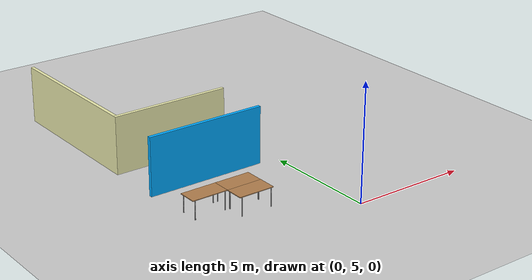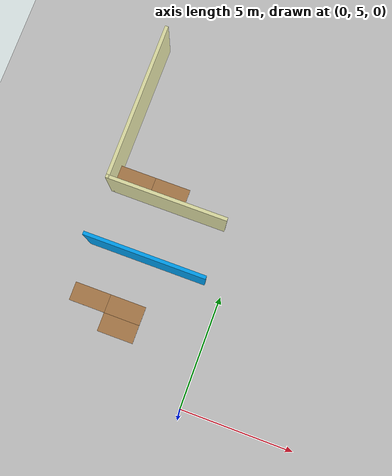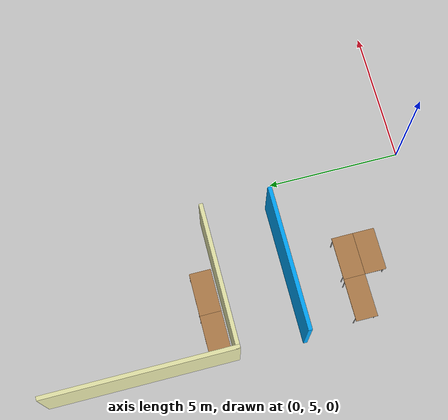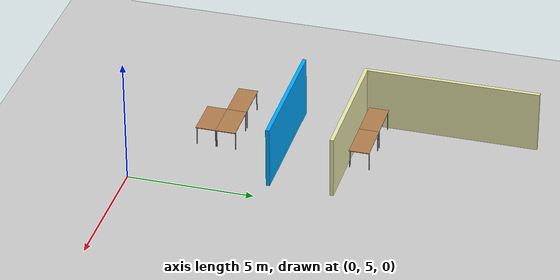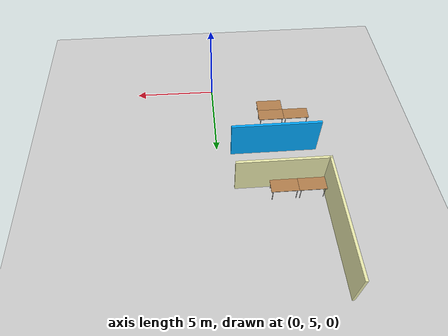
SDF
<sdf version="1.6">
 <world name="default">
  <model name="ground_plane">
   <static>1</static>
   <link name="link">
    <collision name="collision">
     <geometry><plane><normal>0 0 1</normal><size>100 100</size></plane></geometry>
     <surface><friction><ode><mu>100</mu><mu2>50</mu2></ode></friction></surface>
    </collision>
    <visual name="visual">
     <cast_shadows>0</cast_shadows>
     <geometry><plane><normal>0 0 1</normal><size>100 100</size></plane></geometry>
     <material>
      <script><uri>file://media/materials/scripts/gazebo.material</uri><name>Gazebo/Grey</name></script>
     </material>
    </visual>
   </link>
  </model>
  <model name="Building">
   <link name="Wall_40">
    <collision name="Wall_40_Collision">
     <geometry><box><size>6.95 0.15 2.5</size></box></geometry>
     <pose>0 0 1.25 0 -0 0</pose>
    </collision>
    <visual name="Wall_40_Visual">
     <pose>0 0 1.25 0 -0 0</pose>
     <geometry><box><size>6.95 0.15 2.5</size></box></geometry>
     <material>
      <script><uri>file://media/materials/scripts/gazebo.material</uri><name>Gazebo/Grey</name></script>
      <ambient>0.92 0.92 0.68 1</ambient>
     </material>
     <meta><layer>0</layer></meta>
    </visual>
    <pose>-6 16.2364 0 0 0 -1.5708</pose>
   </link>
   <link name="Wall_42">
    <collision name="Wall_42_Collision">
     <geometry><box><size>5.25 0.15 2.5</size></box></geometry>
     <pose>0 0 1.25 0 -0 0</pose>
    </collision>
    <visual name="Wall_42_Visual">
     <pose>0 0 1.25 0 -0 0</pose>
     <geometry><box><size>5.25 0.15 2.5</size></box></geometry>
     <material>
      <script><uri>file://media/materials/scripts/gazebo.material</uri><name>Gazebo/Grey</name></script>
      <ambient>0.92 0.92 0.68 1</ambient>
     </material>
     <meta><layer>0</layer></meta>
    </visual>
    <pose>-3.45 12.8364 0 0 -0 0</pose>
   </link>
   <link name="Wall_49">
    <collision name="Wall_49_Collision">
     <geometry><box><size>5.25 0.15 2.5</size></box></geometry>
     <pose>0 0 1.25 0 -0 0</pose>
    </collision>
    <visual name="Wall_49_Visual">
     <pose>0 0 1.25 0 -0 0</pose>
     <geometry><box><size>5.25 0.15 2.5</size></box></geometry>
     <material>
      <script><uri>file://media/materials/scripts/gazebo.material</uri><name>Gazebo/Grey</name></script>
      <ambient>0 0.666667 1 1</ambient>
     </material>
     <meta><layer>0</layer></meta>
    </visual>
    <pose>-3.45 10.3364 0 0 -0 3.14159</pose>
   </link>
   <static>1</static>
  </model>
  <model name="tablealt_0">
   <link name="link">
    <inertial>
     <mass>1</mass>
     <inertia><ixx>1</ixx><ixy>0</ixy><ixz>0</ixz><iyy>1</iyy><iyz>0</iyz><izz>1</izz></inertia>
    </inertial>
    <visual name="back_right_leg">
     <pose>-0.68 -0.38 0.4 0 -0 0</pose>
     <geometry><cylinder><radius>0.02</radius><length>0.8</length></cylinder></geometry>
     <material>
      <script><uri>file://media/materials/scripts/gazebo.material</uri><name>Gazebo/Grey</name></script>
      <shader type="pixel"><normal_map>__default__</normal_map></shader>
      <ambient>0.3 0.3 0.3 1</ambient>
      <diffuse>0.7 0.7 0.7 1</diffuse>
      <specular>0.01 0.01 0.01 1</specular>
      <emissive>0 0 0 1</emissive>
     </material>
    </visual>
    <visual name="back_left_leg">
     <pose>-0.68 0.38 0.4 0 -0 0</pose>
     <geometry><cylinder><radius>0.02</radius><length>0.8</length></cylinder></geometry>
     <material>
      <script><uri>file://media/materials/scripts/gazebo.material</uri><name>Gazebo/Grey</name></script>
      <shader type="pixel"><normal_map>__default__</normal_map></shader>
      <ambient>0.3 0.3 0.3 1</ambient>
      <diffuse>0.7 0.7 0.7 1</diffuse>
      <specular>0.01 0.01 0.01 1</specular>
      <emissive>0 0 0 1</emissive>
     </material>
    </visual>
    <visual name="visual1">
     <pose>0 0 0.8 0 -0 0</pose>
     <geometry><box><size>1.57 0.8 0.03</size></box></geometry>
     <material>
      <script><uri>file://media/materials/scripts/gazebo.material</uri><name>Gazebo/Wood</name></script>
      <shader type="pixel"><normal_map>__default__</normal_map></shader>
      <ambient>0.92 0.92 0.68 1</ambient>
      <diffuse>1 1 1 1</diffuse>
      <specular>0.2 0.2 0.2 1</specular>
      <emissive>0 0 0 1</emissive>
     </material>
    </visual>
    <visual name="front_left_leg">
     <pose>0.68 0.38 0.4 0 -0 0</pose>
     <geometry><cylinder><radius>0.02</radius><length>0.8</length></cylinder></geometry>
     <material>
      <script><uri>file://media/materials/scripts/gazebo.material</uri><name>Gazebo/Grey</name></script>
      <shader type="pixel"><normal_map>__default__</normal_map></shader>
      <ambient>0.3 0.3 0.3 1</ambient>
      <diffuse>0.7 0.7 0.7 1</diffuse>
      <specular>0.01 0.01 0.01 1</specular>
      <emissive>0 0 0 1</emissive>
     </material>
    </visual>
    <visual name="front_right_leg">
     <pose>0.68 -0.38 0.4 0 -0 0</pose>
     <geometry><cylinder><radius>0.02</radius><length>0.8</length></cylinder></geometry>
     <material>
      <script><uri>file://media/materials/scripts/gazebo.material</uri><name>Gazebo/Grey</name></script>
      <shader type="pixel"><normal_map>__default__</normal_map></shader>
      <ambient>0.3 0.3 0.3 1</ambient>
      <diffuse>0.7 0.7 0.7 1</diffuse>
      <specular>0.01 0.01 0.01 1</specular>
      <emissive>0 0 0 1</emissive>
     </material>
    </visual>
    <collision name="front_right_leg">
     <pose>0.68 -0.38 0.4 0 -0 0</pose>
     <geometry><cylinder><radius>0.02</radius><length>0.8</length></cylinder></geometry>
     <surface>
      <friction>
       <ode><mu>1</mu><mu2>1</mu2><fdir1>0 0 0</fdir1><slip1>0</slip1><slip2>0</slip2></ode>
       <torsional>
        <coefficient>1</coefficient>
        <patch_radius>0</patch_radius>
        <surface_radius>0</surface_radius>
        <use_patch_radius>1</use_patch_radius>
        <ode><slip>0</slip></ode>
       </torsional>
      </friction>
      <bounce><restitution_coefficient>0</restitution_coefficient><threshold>1e+06</threshold></bounce>
      <contact>
       <collide_without_contact>0</collide_without_contact>
       <collide_without_contact_bitmask>1</collide_without_contact_bitmask>
       <collide_bitmask>1</collide_bitmask>
       <ode>
        <soft_cfm>0</soft_cfm>
        <soft_erp>0.2</soft_erp>
        <kp>1e+13</kp>
        <kd>1</kd>
        <max_vel>0.01</max_vel>
        <min_depth>0</min_depth>
       </ode>
       <bullet>
        <split_impulse>1</split_impulse>
        <split_impulse_penetration_threshold>-0.01</split_impulse_penetration_threshold>
        <soft_cfm>0</soft_cfm>
        <soft_erp>0.2</soft_erp>
        <kp>1e+13</kp>
        <kd>1</kd>
       </bullet>
      </contact>
     </surface>
    </collision>
    <collision name="surface">
     <pose>0 0 0.8 0 -0 0</pose>
     <geometry><box><size>1.5 0.8 0.03</size></box></geometry>
     <surface>
      <friction>
       <ode><mu>0.6</mu><mu2>0.6</mu2><fdir1>0 0 0</fdir1><slip1>0</slip1><slip2>0</slip2></ode>
       <torsional>
        <coefficient>1</coefficient>
        <patch_radius>0</patch_radius>
        <surface_radius>0</surface_radius>
        <use_patch_radius>1</use_patch_radius>
        <ode><slip>0</slip></ode>
       </torsional>
      </friction>
      <bounce><restitution_coefficient>0</restitution_coefficient><threshold>1e+06</threshold></bounce>
      <contact>
       <collide_without_contact>0</collide_without_contact>
       <collide_without_contact_bitmask>1</collide_without_contact_bitmask>
       <collide_bitmask>1</collide_bitmask>
       <ode>
        <soft_cfm>0</soft_cfm>
        <soft_erp>0.2</soft_erp>
        <kp>1e+13</kp>
        <kd>1</kd>
        <max_vel>0.01</max_vel>
        <min_depth>0</min_depth>
       </ode>
       <bullet>
        <split_impulse>1</split_impulse>
        <split_impulse_penetration_threshold>-0.01</split_impulse_penetration_threshold>
        <soft_cfm>0</soft_cfm>
        <soft_erp>0.2</soft_erp>
        <kp>1e+13</kp>
        <kd>1</kd>
       </bullet>
      </contact>
     </surface>
    </collision>
    <collision name="front_left_leg">
     <pose>0.68 0.38 0.4 0 -0 0</pose>
     <geometry><cylinder><radius>0.02</radius><length>0.8</length></cylinder></geometry>
     <surface>
      <friction>
       <ode><mu>1</mu><mu2>1</mu2><fdir1>0 0 0</fdir1><slip1>0</slip1><slip2>0</slip2></ode>
       <torsional>
        <coefficient>1</coefficient>
        <patch_radius>0</patch_radius>
        <surface_radius>0</surface_radius>
        <use_patch_radius>1</use_patch_radius>
        <ode><slip>0</slip></ode>
       </torsional>
      </friction>
      <bounce><restitution_coefficient>0</restitution_coefficient><threshold>1e+06</threshold></bounce>
      <contact>
       <collide_without_contact>0</collide_without_contact>
       <collide_without_contact_bitmask>1</collide_without_contact_bitmask>
       <collide_bitmask>1</collide_bitmask>
       <ode>
        <soft_cfm>0</soft_cfm>
        <soft_erp>0.2</soft_erp>
        <kp>1e+13</kp>
        <kd>1</kd>
        <max_vel>0.01</max_vel>
        <min_depth>0</min_depth>
       </ode>
       <bullet>
        <split_impulse>1</split_impulse>
        <split_impulse_penetration_threshold>-0.01</split_impulse_penetration_threshold>
        <soft_cfm>0</soft_cfm>
        <soft_erp>0.2</soft_erp>
        <kp>1e+13</kp>
        <kd>1</kd>
       </bullet>
      </contact>
     </surface>
    </collision>
    <collision name="back_left_leg">
     <pose>-0.68 0.38 0.4 0 -0 0</pose>
     <geometry><cylinder><radius>0.02</radius><length>0.8</length></cylinder></geometry>
     <surface>
      <friction>
       <ode><mu>1</mu><mu2>1</mu2><fdir1>0 0 0</fdir1><slip1>0</slip1><slip2>0</slip2></ode>
       <torsional>
        <coefficient>1</coefficient>
        <patch_radius>0</patch_radius>
        <surface_radius>0</surface_radius>
        <use_patch_radius>1</use_patch_radius>
        <ode><slip>0</slip></ode>
       </torsional>
      </friction>
      <bounce><restitution_coefficient>0</restitution_coefficient><threshold>1e+06</threshold></bounce>
      <contact>
       <collide_without_contact>0</collide_without_contact>
       <collide_without_contact_bitmask>1</collide_without_contact_bitmask>
       <collide_bitmask>1</collide_bitmask>
       <ode>
        <soft_cfm>0</soft_cfm>
        <soft_erp>0.2</soft_erp>
        <kp>1e+13</kp>
        <kd>1</kd>
        <max_vel>0.01</max_vel>
        <min_depth>0</min_depth>
       </ode>
       <bullet>
        <split_impulse>1</split_impulse>
        <split_impulse_penetration_threshold>-0.01</split_impulse_penetration_threshold>
        <soft_cfm>0</soft_cfm>
        <soft_erp>0.2</soft_erp>
        <kp>1e+13</kp>
        <kd>1</kd>
       </bullet>
      </contact>
     </surface>
    </collision>
    <collision name="back_right_leg">
     <pose>-0.68 -0.38 0.4 0 -0 0</pose>
     <geometry><cylinder><radius>0.02</radius><length>0.8</length></cylinder></geometry>
     <surface>
      <friction>
       <ode><mu>1</mu><mu2>1</mu2><fdir1>0 0 0</fdir1><slip1>0</slip1><slip2>0</slip2></ode>
       <torsional>
        <coefficient>1</coefficient>
        <patch_radius>0</patch_radius>
        <surface_radius>0</surface_radius>
        <use_patch_radius>1</use_patch_radius>
        <ode><slip>0</slip></ode>
       </torsional>
      </friction>
      <bounce><restitution_coefficient>0</restitution_coefficient><threshold>1e+06</threshold></bounce>
      <contact>
       <collide_without_contact>0</collide_without_contact>
       <collide_without_contact_bitmask>1</collide_without_contact_bitmask>
       <collide_bitmask>1</collide_bitmask>
       <ode>
        <soft_cfm>0</soft_cfm>
        <soft_erp>0.2</soft_erp>
        <kp>1e+13</kp>
        <kd>1</kd>
        <max_vel>0.01</max_vel>
        <min_depth>0</min_depth>
       </ode>
       <bullet>
        <split_impulse>1</split_impulse>
        <split_impulse_penetration_threshold>-0.01</split_impulse_penetration_threshold>
        <soft_cfm>0</soft_cfm>
        <soft_erp>0.2</soft_erp>
        <kp>1e+13</kp>
        <kd>1</kd>
       </bullet>
      </contact>
     </surface>
    </collision>
   </link>
   <static>1</static>
   <pose>-5.13 8.07 0 0 -0 0</pose>
  </model>
  <model name="tablealt_0_clone">
   <link name="link">
    <inertial>
     <mass>1</mass>
     <inertia><ixx>1</ixx><ixy>0</ixy><ixz>0</ixz><iyy>1</iyy><iyz>0</iyz><izz>1</izz></inertia>
    </inertial>
    <visual name="back_right_leg">
     <pose>-0.68 -0.38 0.4 0 -0 0</pose>
     <geometry><cylinder><radius>0.02</radius><length>0.8</length></cylinder></geometry>
     <material>
      <script><uri>file://media/materials/scripts/gazebo.material</uri><name>Gazebo/Grey</name></script>
      <shader type="pixel"><normal_map>__default__</normal_map></shader>
      <ambient>0.3 0.3 0.3 1</ambient>
      <diffuse>0.7 0.7 0.7 1</diffuse>
      <specular>0.01 0.01 0.01 1</specular>
      <emissive>0 0 0 1</emissive>
     </material>
    </visual>
    <visual name="back_left_leg">
     <pose>-0.68 0.38 0.4 0 -0 0</pose>
     <geometry><cylinder><radius>0.02</radius><length>0.8</length></cylinder></geometry>
     <material>
      <script><uri>file://media/materials/scripts/gazebo.material</uri><name>Gazebo/Grey</name></script>
      <shader type="pixel"><normal_map>__default__</normal_map></shader>
      <ambient>0.3 0.3 0.3 1</ambient>
      <diffuse>0.7 0.7 0.7 1</diffuse>
      <specular>0.01 0.01 0.01 1</specular>
      <emissive>0 0 0 1</emissive>
     </material>
    </visual>
    <visual name="visual1">
     <pose>0 0 0.8 0 -0 0</pose>
     <geometry><box><size>1.57 0.8 0.03</size></box></geometry>
     <material>
      <script><uri>file://media/materials/scripts/gazebo.material</uri><name>Gazebo/Wood</name></script>
      <shader type="pixel"><normal_map>__default__</normal_map></shader>
      <ambient>0.92 0.92 0.68 1</ambient>
      <diffuse>1 1 1 1</diffuse>
      <specular>0.2 0.2 0.2 1</specular>
      <emissive>0 0 0 1</emissive>
     </material>
    </visual>
    <visual name="front_left_leg">
     <pose>0.68 0.38 0.4 0 -0 0</pose>
     <geometry><cylinder><radius>0.02</radius><length>0.8</length></cylinder></geometry>
     <material>
      <script><uri>file://media/materials/scripts/gazebo.material</uri><name>Gazebo/Grey</name></script>
      <shader type="pixel"><normal_map>__default__</normal_map></shader>
      <ambient>0.3 0.3 0.3 1</ambient>
      <diffuse>0.7 0.7 0.7 1</diffuse>
      <specular>0.01 0.01 0.01 1</specular>
      <emissive>0 0 0 1</emissive>
     </material>
    </visual>
    <visual name="front_right_leg">
     <pose>0.68 -0.38 0.4 0 -0 0</pose>
     <geometry><cylinder><radius>0.02</radius><length>0.8</length></cylinder></geometry>
     <material>
      <script><uri>file://media/materials/scripts/gazebo.material</uri><name>Gazebo/Grey</name></script>
      <shader type="pixel"><normal_map>__default__</normal_map></shader>
      <ambient>0.3 0.3 0.3 1</ambient>
      <diffuse>0.7 0.7 0.7 1</diffuse>
      <specular>0.01 0.01 0.01 1</specular>
      <emissive>0 0 0 1</emissive>
     </material>
    </visual>
    <collision name="front_right_leg">
     <pose>0.68 -0.38 0.4 0 -0 0</pose>
     <geometry><cylinder><radius>0.02</radius><length>0.8</length></cylinder></geometry>
     <surface>
      <friction>
       <ode><mu>1</mu><mu2>1</mu2><fdir1>0 0 0</fdir1><slip1>0</slip1><slip2>0</slip2></ode>
       <torsional>
        <coefficient>1</coefficient>
        <patch_radius>0</patch_radius>
        <surface_radius>0</surface_radius>
        <use_patch_radius>1</use_patch_radius>
        <ode><slip>0</slip></ode>
       </torsional>
      </friction>
      <bounce><restitution_coefficient>0</restitution_coefficient><threshold>1e+06</threshold></bounce>
      <contact>
       <collide_without_contact>0</collide_without_contact>
       <collide_without_contact_bitmask>1</collide_without_contact_bitmask>
       <collide_bitmask>1</collide_bitmask>
       <ode>
        <soft_cfm>0</soft_cfm>
        <soft_erp>0.2</soft_erp>
        <kp>1e+13</kp>
        <kd>1</kd>
        <max_vel>0.01</max_vel>
        <min_depth>0</min_depth>
       </ode>
       <bullet>
        <split_impulse>1</split_impulse>
        <split_impulse_penetration_threshold>-0.01</split_impulse_penetration_threshold>
        <soft_cfm>0</soft_cfm>
        <soft_erp>0.2</soft_erp>
        <kp>1e+13</kp>
        <kd>1</kd>
       </bullet>
      </contact>
     </surface>
    </collision>
    <collision name="surface">
     <pose>0 0 0.8 0 -0 0</pose>
     <geometry><box><size>1.5 0.8 0.03</size></box></geometry>
     <surface>
      <friction>
       <ode><mu>0.6</mu><mu2>0.6</mu2><fdir1>0 0 0</fdir1><slip1>0</slip1><slip2>0</slip2></ode>
       <torsional>
        <coefficient>1</coefficient>
        <patch_radius>0</patch_radius>
        <surface_radius>0</surface_radius>
        <use_patch_radius>1</use_patch_radius>
        <ode><slip>0</slip></ode>
       </torsional>
      </friction>
      <bounce><restitution_coefficient>0</restitution_coefficient><threshold>1e+06</threshold></bounce>
      <contact>
       <collide_without_contact>0</collide_without_contact>
       <collide_without_contact_bitmask>1</collide_without_contact_bitmask>
       <collide_bitmask>1</collide_bitmask>
       <ode>
        <soft_cfm>0</soft_cfm>
        <soft_erp>0.2</soft_erp>
        <kp>1e+13</kp>
        <kd>1</kd>
        <max_vel>0.01</max_vel>
        <min_depth>0</min_depth>
       </ode>
       <bullet>
        <split_impulse>1</split_impulse>
        <split_impulse_penetration_threshold>-0.01</split_impulse_penetration_threshold>
        <soft_cfm>0</soft_cfm>
        <soft_erp>0.2</soft_erp>
        <kp>1e+13</kp>
        <kd>1</kd>
       </bullet>
      </contact>
     </surface>
    </collision>
    <collision name="front_left_leg">
     <pose>0.68 0.38 0.4 0 -0 0</pose>
     <geometry><cylinder><radius>0.02</radius><length>0.8</length></cylinder></geometry>
     <surface>
      <friction>
       <ode><mu>1</mu><mu2>1</mu2><fdir1>0 0 0</fdir1><slip1>0</slip1><slip2>0</slip2></ode>
       <torsional>
        <coefficient>1</coefficient>
        <patch_radius>0</patch_radius>
        <surface_radius>0</surface_radius>
        <use_patch_radius>1</use_patch_radius>
        <ode><slip>0</slip></ode>
       </torsional>
      </friction>
      <bounce><restitution_coefficient>0</restitution_coefficient><threshold>1e+06</threshold></bounce>
      <contact>
       <collide_without_contact>0</collide_without_contact>
       <collide_without_contact_bitmask>1</collide_without_contact_bitmask>
       <collide_bitmask>1</collide_bitmask>
       <ode>
        <soft_cfm>0</soft_cfm>
        <soft_erp>0.2</soft_erp>
        <kp>1e+13</kp>
        <kd>1</kd>
        <max_vel>0.01</max_vel>
        <min_depth>0</min_depth>
       </ode>
       <bullet>
        <split_impulse>1</split_impulse>
        <split_impulse_penetration_threshold>-0.01</split_impulse_penetration_threshold>
        <soft_cfm>0</soft_cfm>
        <soft_erp>0.2</soft_erp>
        <kp>1e+13</kp>
        <kd>1</kd>
       </bullet>
      </contact>
     </surface>
    </collision>
    <collision name="back_left_leg">
     <pose>-0.68 0.38 0.4 0 -0 0</pose>
     <geometry><cylinder><radius>0.02</radius><length>0.8</length></cylinder></geometry>
     <surface>
      <friction>
       <ode><mu>1</mu><mu2>1</mu2><fdir1>0 0 0</fdir1><slip1>0</slip1><slip2>0</slip2></ode>
       <torsional>
        <coefficient>1</coefficient>
        <patch_radius>0</patch_radius>
        <surface_radius>0</surface_radius>
        <use_patch_radius>1</use_patch_radius>
        <ode><slip>0</slip></ode>
       </torsional>
      </friction>
      <bounce><restitution_coefficient>0</restitution_coefficient><threshold>1e+06</threshold></bounce>
      <contact>
       <collide_without_contact>0</collide_without_contact>
       <collide_without_contact_bitmask>1</collide_without_contact_bitmask>
       <collide_bitmask>1</collide_bitmask>
       <ode>
        <soft_cfm>0</soft_cfm>
        <soft_erp>0.2</soft_erp>
        <kp>1e+13</kp>
        <kd>1</kd>
        <max_vel>0.01</max_vel>
        <min_depth>0</min_depth>
       </ode>
       <bullet>
        <split_impulse>1</split_impulse>
        <split_impulse_penetration_threshold>-0.01</split_impulse_penetration_threshold>
        <soft_cfm>0</soft_cfm>
        <soft_erp>0.2</soft_erp>
        <kp>1e+13</kp>
        <kd>1</kd>
       </bullet>
      </contact>
     </surface>
    </collision>
    <collision name="back_right_leg">
     <pose>-0.68 -0.38 0.4 0 -0 0</pose>
     <geometry><cylinder><radius>0.02</radius><length>0.8</length></cylinder></geometry>
     <surface>
      <friction>
       <ode><mu>1</mu><mu2>1</mu2><fdir1>0 0 0</fdir1><slip1>0</slip1><slip2>0</slip2></ode>
       <torsional>
        <coefficient>1</coefficient>
        <patch_radius>0</patch_radius>
        <surface_radius>0</surface_radius>
        <use_patch_radius>1</use_patch_radius>
        <ode><slip>0</slip></ode>
       </torsional>
      </friction>
      <bounce><restitution_coefficient>0</restitution_coefficient><threshold>1e+06</threshold></bounce>
      <contact>
       <collide_without_contact>0</collide_without_contact>
       <collide_without_contact_bitmask>1</collide_without_contact_bitmask>
       <collide_bitmask>1</collide_bitmask>
       <ode>
        <soft_cfm>0</soft_cfm>
        <soft_erp>0.2</soft_erp>
        <kp>1e+13</kp>
        <kd>1</kd>
        <max_vel>0.01</max_vel>
        <min_depth>0</min_depth>
       </ode>
       <bullet>
        <split_impulse>1</split_impulse>
        <split_impulse_penetration_threshold>-0.01</split_impulse_penetration_threshold>
        <soft_cfm>0</soft_cfm>
        <soft_erp>0.2</soft_erp>
        <kp>1e+13</kp>
        <kd>1</kd>
       </bullet>
      </contact>
     </surface>
    </collision>
   </link>
   <static>1</static>
   <pose>-3.56 8.07 0 0 -0 0</pose>
  </model>
  <model name="tablealt_0_clone_3">
   <link name="link">
    <inertial>
     <mass>1</mass>
     <inertia><ixx>1</ixx><ixy>0</ixy><ixz>0</ixz><iyy>1</iyy><iyz>0</iyz><izz>1</izz></inertia>
    </inertial>
    <visual name="back_right_leg">
     <pose>-0.68 -0.38 0.4 0 -0 0</pose>
     <geometry><cylinder><radius>0.02</radius><length>0.8</length></cylinder></geometry>
     <material>
      <script><uri>file://media/materials/scripts/gazebo.material</uri><name>Gazebo/Grey</name></script>
      <shader type="pixel"><normal_map>__default__</normal_map></shader>
      <ambient>0.3 0.3 0.3 1</ambient>
      <diffuse>0.7 0.7 0.7 1</diffuse>
      <specular>0.01 0.01 0.01 1</specular>
      <emissive>0 0 0 1</emissive>
     </material>
    </visual>
    <visual name="back_left_leg">
     <pose>-0.68 0.38 0.4 0 -0 0</pose>
     <geometry><cylinder><radius>0.02</radius><length>0.8</length></cylinder></geometry>
     <material>
      <script><uri>file://media/materials/scripts/gazebo.material</uri><name>Gazebo/Grey</name></script>
      <shader type="pixel"><normal_map>__default__</normal_map></shader>
      <ambient>0.3 0.3 0.3 1</ambient>
      <diffuse>0.7 0.7 0.7 1</diffuse>
      <specular>0.01 0.01 0.01 1</specular>
      <emissive>0 0 0 1</emissive>
     </material>
    </visual>
    <visual name="visual1">
     <pose>0 0 0.8 0 -0 0</pose>
     <geometry><box><size>1.57 0.8 0.03</size></box></geometry>
     <material>
      <script><uri>file://media/materials/scripts/gazebo.material</uri><name>Gazebo/Wood</name></script>
      <shader type="pixel"><normal_map>__default__</normal_map></shader>
      <ambient>0.92 0.92 0.68 1</ambient>
      <diffuse>1 1 1 1</diffuse>
      <specular>0.2 0.2 0.2 1</specular>
      <emissive>0 0 0 1</emissive>
     </material>
    </visual>
    <visual name="front_left_leg">
     <pose>0.68 0.38 0.4 0 -0 0</pose>
     <geometry><cylinder><radius>0.02</radius><length>0.8</length></cylinder></geometry>
     <material>
      <script><uri>file://media/materials/scripts/gazebo.material</uri><name>Gazebo/Grey</name></script>
      <shader type="pixel"><normal_map>__default__</normal_map></shader>
      <ambient>0.3 0.3 0.3 1</ambient>
      <diffuse>0.7 0.7 0.7 1</diffuse>
      <specular>0.01 0.01 0.01 1</specular>
      <emissive>0 0 0 1</emissive>
     </material>
    </visual>
    <visual name="front_right_leg">
     <pose>0.68 -0.38 0.4 0 -0 0</pose>
     <geometry><cylinder><radius>0.02</radius><length>0.8</length></cylinder></geometry>
     <material>
      <script><uri>file://media/materials/scripts/gazebo.material</uri><name>Gazebo/Grey</name></script>
      <shader type="pixel"><normal_map>__default__</normal_map></shader>
      <ambient>0.3 0.3 0.3 1</ambient>
      <diffuse>0.7 0.7 0.7 1</diffuse>
      <specular>0.01 0.01 0.01 1</specular>
      <emissive>0 0 0 1</emissive>
     </material>
    </visual>
    <collision name="front_right_leg">
     <pose>0.68 -0.38 0.4 0 -0 0</pose>
     <geometry><cylinder><radius>0.02</radius><length>0.8</length></cylinder></geometry>
     <surface>
      <friction>
       <ode><mu>1</mu><mu2>1</mu2><fdir1>0 0 0</fdir1><slip1>0</slip1><slip2>0</slip2></ode>
       <torsional>
        <coefficient>1</coefficient>
        <patch_radius>0</patch_radius>
        <surface_radius>0</surface_radius>
        <use_patch_radius>1</use_patch_radius>
        <ode><slip>0</slip></ode>
       </torsional>
      </friction>
      <bounce><restitution_coefficient>0</restitution_coefficient><threshold>1e+06</threshold></bounce>
      <contact>
       <collide_without_contact>0</collide_without_contact>
       <collide_without_contact_bitmask>1</collide_without_contact_bitmask>
       <collide_bitmask>1</collide_bitmask>
       <ode>
        <soft_cfm>0</soft_cfm>
        <soft_erp>0.2</soft_erp>
        <kp>1e+13</kp>
        <kd>1</kd>
        <max_vel>0.01</max_vel>
        <min_depth>0</min_depth>
       </ode>
       <bullet>
        <split_impulse>1</split_impulse>
        <split_impulse_penetration_threshold>-0.01</split_impulse_penetration_threshold>
        <soft_cfm>0</soft_cfm>
        <soft_erp>0.2</soft_erp>
        <kp>1e+13</kp>
        <kd>1</kd>
       </bullet>
      </contact>
     </surface>
    </collision>
    <collision name="surface">
     <pose>0 0 0.8 0 -0 0</pose>
     <geometry><box><size>1.5 0.8 0.03</size></box></geometry>
     <surface>
      <friction>
       <ode><mu>0.6</mu><mu2>0.6</mu2><fdir1>0 0 0</fdir1><slip1>0</slip1><slip2>0</slip2></ode>
       <torsional>
        <coefficient>1</coefficient>
        <patch_radius>0</patch_radius>
        <surface_radius>0</surface_radius>
        <use_patch_radius>1</use_patch_radius>
        <ode><slip>0</slip></ode>
       </torsional>
      </friction>
      <bounce><restitution_coefficient>0</restitution_coefficient><threshold>1e+06</threshold></bounce>
      <contact>
       <collide_without_contact>0</collide_without_contact>
       <collide_without_contact_bitmask>1</collide_without_contact_bitmask>
       <collide_bitmask>1</collide_bitmask>
       <ode>
        <soft_cfm>0</soft_cfm>
        <soft_erp>0.2</soft_erp>
        <kp>1e+13</kp>
        <kd>1</kd>
        <max_vel>0.01</max_vel>
        <min_depth>0</min_depth>
       </ode>
       <bullet>
        <split_impulse>1</split_impulse>
        <split_impulse_penetration_threshold>-0.01</split_impulse_penetration_threshold>
        <soft_cfm>0</soft_cfm>
        <soft_erp>0.2</soft_erp>
        <kp>1e+13</kp>
        <kd>1</kd>
       </bullet>
      </contact>
     </surface>
    </collision>
    <collision name="front_left_leg">
     <pose>0.68 0.38 0.4 0 -0 0</pose>
     <geometry><cylinder><radius>0.02</radius><length>0.8</length></cylinder></geometry>
     <surface>
      <friction>
       <ode><mu>1</mu><mu2>1</mu2><fdir1>0 0 0</fdir1><slip1>0</slip1><slip2>0</slip2></ode>
       <torsional>
        <coefficient>1</coefficient>
        <patch_radius>0</patch_radius>
        <surface_radius>0</surface_radius>
        <use_patch_radius>1</use_patch_radius>
        <ode><slip>0</slip></ode>
       </torsional>
      </friction>
      <bounce><restitution_coefficient>0</restitution_coefficient><threshold>1e+06</threshold></bounce>
      <contact>
       <collide_without_contact>0</collide_without_contact>
       <collide_without_contact_bitmask>1</collide_without_contact_bitmask>
       <collide_bitmask>1</collide_bitmask>
       <ode>
        <soft_cfm>0</soft_cfm>
        <soft_erp>0.2</soft_erp>
        <kp>1e+13</kp>
        <kd>1</kd>
        <max_vel>0.01</max_vel>
        <min_depth>0</min_depth>
       </ode>
       <bullet>
        <split_impulse>1</split_impulse>
        <split_impulse_penetration_threshold>-0.01</split_impulse_penetration_threshold>
        <soft_cfm>0</soft_cfm>
        <soft_erp>0.2</soft_erp>
        <kp>1e+13</kp>
        <kd>1</kd>
       </bullet>
      </contact>
     </surface>
    </collision>
    <collision name="back_left_leg">
     <pose>-0.68 0.38 0.4 0 -0 0</pose>
     <geometry><cylinder><radius>0.02</radius><length>0.8</length></cylinder></geometry>
     <surface>
      <friction>
       <ode><mu>1</mu><mu2>1</mu2><fdir1>0 0 0</fdir1><slip1>0</slip1><slip2>0</slip2></ode>
       <torsional>
        <coefficient>1</coefficient>
        <patch_radius>0</patch_radius>
        <surface_radius>0</surface_radius>
        <use_patch_radius>1</use_patch_radius>
        <ode><slip>0</slip></ode>
       </torsional>
      </friction>
      <bounce><restitution_coefficient>0</restitution_coefficient><threshold>1e+06</threshold></bounce>
      <contact>
       <collide_without_contact>0</collide_without_contact>
       <collide_without_contact_bitmask>1</collide_without_contact_bitmask>
       <collide_bitmask>1</collide_bitmask>
       <ode>
        <soft_cfm>0</soft_cfm>
        <soft_erp>0.2</soft_erp>
        <kp>1e+13</kp>
        <kd>1</kd>
        <max_vel>0.01</max_vel>
        <min_depth>0</min_depth>
       </ode>
       <bullet>
        <split_impulse>1</split_impulse>
        <split_impulse_penetration_threshold>-0.01</split_impulse_penetration_threshold>
        <soft_cfm>0</soft_cfm>
        <soft_erp>0.2</soft_erp>
        <kp>1e+13</kp>
        <kd>1</kd>
       </bullet>
      </contact>
     </surface>
    </collision>
    <collision name="back_right_leg">
     <pose>-0.68 -0.38 0.4 0 -0 0</pose>
     <geometry><cylinder><radius>0.02</radius><length>0.8</length></cylinder></geometry>
     <surface>
      <friction>
       <ode><mu>1</mu><mu2>1</mu2><fdir1>0 0 0</fdir1><slip1>0</slip1><slip2>0</slip2></ode>
       <torsional>
        <coefficient>1</coefficient>
        <patch_radius>0</patch_radius>
        <surface_radius>0</surface_radius>
        <use_patch_radius>1</use_patch_radius>
        <ode><slip>0</slip></ode>
       </torsional>
      </friction>
      <bounce><restitution_coefficient>0</restitution_coefficient><threshold>1e+06</threshold></bounce>
      <contact>
       <collide_without_contact>0</collide_without_contact>
       <collide_without_contact_bitmask>1</collide_without_contact_bitmask>
       <collide_bitmask>1</collide_bitmask>
       <ode>
        <soft_cfm>0</soft_cfm>
        <soft_erp>0.2</soft_erp>
        <kp>1e+13</kp>
        <kd>1</kd>
        <max_vel>0.01</max_vel>
        <min_depth>0</min_depth>
       </ode>
       <bullet>
        <split_impulse>1</split_impulse>
        <split_impulse_penetration_threshold>-0.01</split_impulse_penetration_threshold>
        <soft_cfm>0</soft_cfm>
        <soft_erp>0.2</soft_erp>
        <kp>1e+13</kp>
        <kd>1</kd>
       </bullet>
      </contact>
     </surface>
    </collision>
   </link>
   <static>1</static>
   <pose>-3.56 7.27 0 0 -0 0</pose>
  </model>
  <model name="tablealt_0_clone_66">
   <link name="link">
    <inertial>
     <mass>1</mass>
     <inertia><ixx>1</ixx><ixy>0</ixy><ixz>0</ixz><iyy>1</iyy><iyz>0</iyz><izz>1</izz></inertia>
    </inertial>
    <visual name="back_right_leg">
     <pose>-0.68 -0.38 0.4 0 -0 0</pose>
     <geometry><cylinder><radius>0.02</radius><length>0.8</length></cylinder></geometry>
     <material>
      <script><uri>file://media/materials/scripts/gazebo.material</uri><name>Gazebo/Grey</name></script>
      <shader type="pixel"><normal_map>__default__</normal_map></shader>
      <ambient>0.3 0.3 0.3 1</ambient>
      <diffuse>0.7 0.7 0.7 1</diffuse>
      <specular>0.01 0.01 0.01 1</specular>
      <emissive>0 0 0 1</emissive>
     </material>
    </visual>
    <visual name="back_left_leg">
     <pose>-0.68 0.38 0.4 0 -0 0</pose>
     <geometry><cylinder><radius>0.02</radius><length>0.8</length></cylinder></geometry>
     <material>
      <script><uri>file://media/materials/scripts/gazebo.material</uri><name>Gazebo/Grey</name></script>
      <shader type="pixel"><normal_map>__default__</normal_map></shader>
      <ambient>0.3 0.3 0.3 1</ambient>
      <diffuse>0.7 0.7 0.7 1</diffuse>
      <specular>0.01 0.01 0.01 1</specular>
      <emissive>0 0 0 1</emissive>
     </material>
    </visual>
    <visual name="visual1">
     <pose>0 0 0.8 0 -0 0</pose>
     <geometry><box><size>1.57 0.8 0.03</size></box></geometry>
     <material>
      <script><uri>file://media/materials/scripts/gazebo.material</uri><name>Gazebo/Wood</name></script>
      <shader type="pixel"><normal_map>__default__</normal_map></shader>
      <ambient>0.92 0.92 0.68 1</ambient>
      <diffuse>1 1 1 1</diffuse>
      <specular>0.2 0.2 0.2 1</specular>
      <emissive>0 0 0 1</emissive>
     </material>
    </visual>
    <visual name="front_left_leg">
     <pose>0.68 0.38 0.4 0 -0 0</pose>
     <geometry><cylinder><radius>0.02</radius><length>0.8</length></cylinder></geometry>
     <material>
      <script><uri>file://media/materials/scripts/gazebo.material</uri><name>Gazebo/Grey</name></script>
      <shader type="pixel"><normal_map>__default__</normal_map></shader>
      <ambient>0.3 0.3 0.3 1</ambient>
      <diffuse>0.7 0.7 0.7 1</diffuse>
      <specular>0.01 0.01 0.01 1</specular>
      <emissive>0 0 0 1</emissive>
     </material>
    </visual>
    <visual name="front_right_leg">
     <pose>0.68 -0.38 0.4 0 -0 0</pose>
     <geometry><cylinder><radius>0.02</radius><length>0.8</length></cylinder></geometry>
     <material>
      <script><uri>file://media/materials/scripts/gazebo.material</uri><name>Gazebo/Grey</name></script>
      <shader type="pixel"><normal_map>__default__</normal_map></shader>
      <ambient>0.3 0.3 0.3 1</ambient>
      <diffuse>0.7 0.7 0.7 1</diffuse>
      <specular>0.01 0.01 0.01 1</specular>
      <emissive>0 0 0 1</emissive>
     </material>
    </visual>
    <collision name="front_right_leg">
     <pose>0.68 -0.38 0.4 0 -0 0</pose>
     <geometry><cylinder><radius>0.02</radius><length>0.8</length></cylinder></geometry>
     <surface>
      <friction>
       <ode><mu>1</mu><mu2>1</mu2><fdir1>0 0 0</fdir1><slip1>0</slip1><slip2>0</slip2></ode>
       <torsional>
        <coefficient>1</coefficient>
        <patch_radius>0</patch_radius>
        <surface_radius>0</surface_radius>
        <use_patch_radius>1</use_patch_radius>
        <ode><slip>0</slip></ode>
       </torsional>
      </friction>
      <bounce><restitution_coefficient>0</restitution_coefficient><threshold>1e+06</threshold></bounce>
      <contact>
       <collide_without_contact>0</collide_without_contact>
       <collide_without_contact_bitmask>1</collide_without_contact_bitmask>
       <collide_bitmask>1</collide_bitmask>
       <ode>
        <soft_cfm>0</soft_cfm>
        <soft_erp>0.2</soft_erp>
        <kp>1e+13</kp>
        <kd>1</kd>
        <max_vel>0.01</max_vel>
        <min_depth>0</min_depth>
       </ode>
       <bullet>
        <split_impulse>1</split_impulse>
        <split_impulse_penetration_threshold>-0.01</split_impulse_penetration_threshold>
        <soft_cfm>0</soft_cfm>
        <soft_erp>0.2</soft_erp>
        <kp>1e+13</kp>
        <kd>1</kd>
       </bullet>
      </contact>
     </surface>
    </collision>
    <collision name="surface">
     <pose>0 0 0.8 0 -0 0</pose>
     <geometry><box><size>1.5 0.8 0.03</size></box></geometry>
     <surface>
      <friction>
       <ode><mu>0.6</mu><mu2>0.6</mu2><fdir1>0 0 0</fdir1><slip1>0</slip1><slip2>0</slip2></ode>
       <torsional>
        <coefficient>1</coefficient>
        <patch_radius>0</patch_radius>
        <surface_radius>0</surface_radius>
        <use_patch_radius>1</use_patch_radius>
        <ode><slip>0</slip></ode>
       </torsional>
      </friction>
      <bounce><restitution_coefficient>0</restitution_coefficient><threshold>1e+06</threshold></bounce>
      <contact>
       <collide_without_contact>0</collide_without_contact>
       <collide_without_contact_bitmask>1</collide_without_contact_bitmask>
       <collide_bitmask>1</collide_bitmask>
       <ode>
        <soft_cfm>0</soft_cfm>
        <soft_erp>0.2</soft_erp>
        <kp>1e+13</kp>
        <kd>1</kd>
        <max_vel>0.01</max_vel>
        <min_depth>0</min_depth>
       </ode>
       <bullet>
        <split_impulse>1</split_impulse>
        <split_impulse_penetration_threshold>-0.01</split_impulse_penetration_threshold>
        <soft_cfm>0</soft_cfm>
        <soft_erp>0.2</soft_erp>
        <kp>1e+13</kp>
        <kd>1</kd>
       </bullet>
      </contact>
     </surface>
    </collision>
    <collision name="front_left_leg">
     <pose>0.68 0.38 0.4 0 -0 0</pose>
     <geometry><cylinder><radius>0.02</radius><length>0.8</length></cylinder></geometry>
     <surface>
      <friction>
       <ode><mu>1</mu><mu2>1</mu2><fdir1>0 0 0</fdir1><slip1>0</slip1><slip2>0</slip2></ode>
       <torsional>
        <coefficient>1</coefficient>
        <patch_radius>0</patch_radius>
        <surface_radius>0</surface_radius>
        <use_patch_radius>1</use_patch_radius>
        <ode><slip>0</slip></ode>
       </torsional>
      </friction>
      <bounce><restitution_coefficient>0</restitution_coefficient><threshold>1e+06</threshold></bounce>
      <contact>
       <collide_without_contact>0</collide_without_contact>
       <collide_without_contact_bitmask>1</collide_without_contact_bitmask>
       <collide_bitmask>1</collide_bitmask>
       <ode>
        <soft_cfm>0</soft_cfm>
        <soft_erp>0.2</soft_erp>
        <kp>1e+13</kp>
        <kd>1</kd>
        <max_vel>0.01</max_vel>
        <min_depth>0</min_depth>
       </ode>
       <bullet>
        <split_impulse>1</split_impulse>
        <split_impulse_penetration_threshold>-0.01</split_impulse_penetration_threshold>
        <soft_cfm>0</soft_cfm>
        <soft_erp>0.2</soft_erp>
        <kp>1e+13</kp>
        <kd>1</kd>
       </bullet>
      </contact>
     </surface>
    </collision>
    <collision name="back_left_leg">
     <pose>-0.68 0.38 0.4 0 -0 0</pose>
     <geometry><cylinder><radius>0.02</radius><length>0.8</length></cylinder></geometry>
     <surface>
      <friction>
       <ode><mu>1</mu><mu2>1</mu2><fdir1>0 0 0</fdir1><slip1>0</slip1><slip2>0</slip2></ode>
       <torsional>
        <coefficient>1</coefficient>
        <patch_radius>0</patch_radius>
        <surface_radius>0</surface_radius>
        <use_patch_radius>1</use_patch_radius>
        <ode><slip>0</slip></ode>
       </torsional>
      </friction>
      <bounce><restitution_coefficient>0</restitution_coefficient><threshold>1e+06</threshold></bounce>
      <contact>
       <collide_without_contact>0</collide_without_contact>
       <collide_without_contact_bitmask>1</collide_without_contact_bitmask>
       <collide_bitmask>1</collide_bitmask>
       <ode>
        <soft_cfm>0</soft_cfm>
        <soft_erp>0.2</soft_erp>
        <kp>1e+13</kp>
        <kd>1</kd>
        <max_vel>0.01</max_vel>
        <min_depth>0</min_depth>
       </ode>
       <bullet>
        <split_impulse>1</split_impulse>
        <split_impulse_penetration_threshold>-0.01</split_impulse_penetration_threshold>
        <soft_cfm>0</soft_cfm>
        <soft_erp>0.2</soft_erp>
        <kp>1e+13</kp>
        <kd>1</kd>
       </bullet>
      </contact>
     </surface>
    </collision>
    <collision name="back_right_leg">
     <pose>-0.68 -0.38 0.4 0 -0 0</pose>
     <geometry><cylinder><radius>0.02</radius><length>0.8</length></cylinder></geometry>
     <surface>
      <friction>
       <ode><mu>1</mu><mu2>1</mu2><fdir1>0 0 0</fdir1><slip1>0</slip1><slip2>0</slip2></ode>
       <torsional>
        <coefficient>1</coefficient>
        <patch_radius>0</patch_radius>
        <surface_radius>0</surface_radius>
        <use_patch_radius>1</use_patch_radius>
        <ode><slip>0</slip></ode>
       </torsional>
      </friction>
      <bounce><restitution_coefficient>0</restitution_coefficient><threshold>1e+06</threshold></bounce>
      <contact>
       <collide_without_contact>0</collide_without_contact>
       <collide_without_contact_bitmask>1</collide_without_contact_bitmask>
       <collide_bitmask>1</collide_bitmask>
       <ode>
        <soft_cfm>0</soft_cfm>
        <soft_erp>0.2</soft_erp>
        <kp>1e+13</kp>
        <kd>1</kd>
        <max_vel>0.01</max_vel>
        <min_depth>0</min_depth>
       </ode>
       <bullet>
        <split_impulse>1</split_impulse>
        <split_impulse_penetration_threshold>-0.01</split_impulse_penetration_threshold>
        <soft_cfm>0</soft_cfm>
        <soft_erp>0.2</soft_erp>
        <kp>1e+13</kp>
        <kd>1</kd>
       </bullet>
      </contact>
     </surface>
    </collision>
   </link>
   <static>1</static>
   <pose>-5.13 13.4 0 0 -0 0</pose>
  </model>
  <model name="tablealt_0_clone_67">
   <link name="link">
    <inertial>
     <mass>1</mass>
     <inertia><ixx>1</ixx><ixy>0</ixy><ixz>0</ixz><iyy>1</iyy><iyz>0</iyz><izz>1</izz></inertia>
    </inertial>
    <visual name="back_right_leg">
     <pose>-0.68 -0.38 0.4 0 -0 0</pose>
     <geometry><cylinder><radius>0.02</radius><length>0.8</length></cylinder></geometry>
     <material>
      <script><uri>file://media/materials/scripts/gazebo.material</uri><name>Gazebo/Grey</name></script>
      <shader type="pixel"><normal_map>__default__</normal_map></shader>
      <ambient>0.3 0.3 0.3 1</ambient>
      <diffuse>0.7 0.7 0.7 1</diffuse>
      <specular>0.01 0.01 0.01 1</specular>
      <emissive>0 0 0 1</emissive>
     </material>
    </visual>
    <visual name="back_left_leg">
     <pose>-0.68 0.38 0.4 0 -0 0</pose>
     <geometry><cylinder><radius>0.02</radius><length>0.8</length></cylinder></geometry>
     <material>
      <script><uri>file://media/materials/scripts/gazebo.material</uri><name>Gazebo/Grey</name></script>
      <shader type="pixel"><normal_map>__default__</normal_map></shader>
      <ambient>0.3 0.3 0.3 1</ambient>
      <diffuse>0.7 0.7 0.7 1</diffuse>
      <specular>0.01 0.01 0.01 1</specular>
      <emissive>0 0 0 1</emissive>
     </material>
    </visual>
    <visual name="visual1">
     <pose>0 0 0.8 0 -0 0</pose>
     <geometry><box><size>1.57 0.8 0.03</size></box></geometry>
     <material>
      <script><uri>file://media/materials/scripts/gazebo.material</uri><name>Gazebo/Wood</name></script>
      <shader type="pixel"><normal_map>__default__</normal_map></shader>
      <ambient>0.92 0.92 0.68 1</ambient>
      <diffuse>1 1 1 1</diffuse>
      <specular>0.2 0.2 0.2 1</specular>
      <emissive>0 0 0 1</emissive>
     </material>
    </visual>
    <visual name="front_left_leg">
     <pose>0.68 0.38 0.4 0 -0 0</pose>
     <geometry><cylinder><radius>0.02</radius><length>0.8</length></cylinder></geometry>
     <material>
      <script><uri>file://media/materials/scripts/gazebo.material</uri><name>Gazebo/Grey</name></script>
      <shader type="pixel"><normal_map>__default__</normal_map></shader>
      <ambient>0.3 0.3 0.3 1</ambient>
      <diffuse>0.7 0.7 0.7 1</diffuse>
      <specular>0.01 0.01 0.01 1</specular>
      <emissive>0 0 0 1</emissive>
     </material>
    </visual>
    <visual name="front_right_leg">
     <pose>0.68 -0.38 0.4 0 -0 0</pose>
     <geometry><cylinder><radius>0.02</radius><length>0.8</length></cylinder></geometry>
     <material>
      <script><uri>file://media/materials/scripts/gazebo.material</uri><name>Gazebo/Grey</name></script>
      <shader type="pixel"><normal_map>__default__</normal_map></shader>
      <ambient>0.3 0.3 0.3 1</ambient>
      <diffuse>0.7 0.7 0.7 1</diffuse>
      <specular>0.01 0.01 0.01 1</specular>
      <emissive>0 0 0 1</emissive>
     </material>
    </visual>
    <collision name="front_right_leg">
     <pose>0.68 -0.38 0.4 0 -0 0</pose>
     <geometry><cylinder><radius>0.02</radius><length>0.8</length></cylinder></geometry>
     <surface>
      <friction>
       <ode><mu>1</mu><mu2>1</mu2><fdir1>0 0 0</fdir1><slip1>0</slip1><slip2>0</slip2></ode>
       <torsional>
        <coefficient>1</coefficient>
        <patch_radius>0</patch_radius>
        <surface_radius>0</surface_radius>
        <use_patch_radius>1</use_patch_radius>
        <ode><slip>0</slip></ode>
       </torsional>
      </friction>
      <bounce><restitution_coefficient>0</restitution_coefficient><threshold>1e+06</threshold></bounce>
      <contact>
       <collide_without_contact>0</collide_without_contact>
       <collide_without_contact_bitmask>1</collide_without_contact_bitmask>
       <collide_bitmask>1</collide_bitmask>
       <ode>
        <soft_cfm>0</soft_cfm>
        <soft_erp>0.2</soft_erp>
        <kp>1e+13</kp>
        <kd>1</kd>
        <max_vel>0.01</max_vel>
        <min_depth>0</min_depth>
       </ode>
       <bullet>
        <split_impulse>1</split_impulse>
        <split_impulse_penetration_threshold>-0.01</split_impulse_penetration_threshold>
        <soft_cfm>0</soft_cfm>
        <soft_erp>0.2</soft_erp>
        <kp>1e+13</kp>
        <kd>1</kd>
       </bullet>
      </contact>
     </surface>
    </collision>
    <collision name="surface">
     <pose>0 0 0.8 0 -0 0</pose>
     <geometry><box><size>1.5 0.8 0.03</size></box></geometry>
     <surface>
      <friction>
       <ode><mu>0.6</mu><mu2>0.6</mu2><fdir1>0 0 0</fdir1><slip1>0</slip1><slip2>0</slip2></ode>
       <torsional>
        <coefficient>1</coefficient>
        <patch_radius>0</patch_radius>
        <surface_radius>0</surface_radius>
        <use_patch_radius>1</use_patch_radius>
        <ode><slip>0</slip></ode>
       </torsional>
      </friction>
      <bounce><restitution_coefficient>0</restitution_coefficient><threshold>1e+06</threshold></bounce>
      <contact>
       <collide_without_contact>0</collide_without_contact>
       <collide_without_contact_bitmask>1</collide_without_contact_bitmask>
       <collide_bitmask>1</collide_bitmask>
       <ode>
        <soft_cfm>0</soft_cfm>
        <soft_erp>0.2</soft_erp>
        <kp>1e+13</kp>
        <kd>1</kd>
        <max_vel>0.01</max_vel>
        <min_depth>0</min_depth>
       </ode>
       <bullet>
        <split_impulse>1</split_impulse>
        <split_impulse_penetration_threshold>-0.01</split_impulse_penetration_threshold>
        <soft_cfm>0</soft_cfm>
        <soft_erp>0.2</soft_erp>
        <kp>1e+13</kp>
        <kd>1</kd>
       </bullet>
      </contact>
     </surface>
    </collision>
    <collision name="front_left_leg">
     <pose>0.68 0.38 0.4 0 -0 0</pose>
     <geometry><cylinder><radius>0.02</radius><length>0.8</length></cylinder></geometry>
     <surface>
      <friction>
       <ode><mu>1</mu><mu2>1</mu2><fdir1>0 0 0</fdir1><slip1>0</slip1><slip2>0</slip2></ode>
       <torsional>
        <coefficient>1</coefficient>
        <patch_radius>0</patch_radius>
        <surface_radius>0</surface_radius>
        <use_patch_radius>1</use_patch_radius>
        <ode><slip>0</slip></ode>
       </torsional>
      </friction>
      <bounce><restitution_coefficient>0</restitution_coefficient><threshold>1e+06</threshold></bounce>
      <contact>
       <collide_without_contact>0</collide_without_contact>
       <collide_without_contact_bitmask>1</collide_without_contact_bitmask>
       <collide_bitmask>1</collide_bitmask>
       <ode>
        <soft_cfm>0</soft_cfm>
        <soft_erp>0.2</soft_erp>
        <kp>1e+13</kp>
        <kd>1</kd>
        <max_vel>0.01</max_vel>
        <min_depth>0</min_depth>
       </ode>
       <bullet>
        <split_impulse>1</split_impulse>
        <split_impulse_penetration_threshold>-0.01</split_impulse_penetration_threshold>
        <soft_cfm>0</soft_cfm>
        <soft_erp>0.2</soft_erp>
        <kp>1e+13</kp>
        <kd>1</kd>
       </bullet>
      </contact>
     </surface>
    </collision>
    <collision name="back_left_leg">
     <pose>-0.68 0.38 0.4 0 -0 0</pose>
     <geometry><cylinder><radius>0.02</radius><length>0.8</length></cylinder></geometry>
     <surface>
      <friction>
       <ode><mu>1</mu><mu2>1</mu2><fdir1>0 0 0</fdir1><slip1>0</slip1><slip2>0</slip2></ode>
       <torsional>
        <coefficient>1</coefficient>
        <patch_radius>0</patch_radius>
        <surface_radius>0</surface_radius>
        <use_patch_radius>1</use_patch_radius>
        <ode><slip>0</slip></ode>
       </torsional>
      </friction>
      <bounce><restitution_coefficient>0</restitution_coefficient><threshold>1e+06</threshold></bounce>
      <contact>
       <collide_without_contact>0</collide_without_contact>
       <collide_without_contact_bitmask>1</collide_without_contact_bitmask>
       <collide_bitmask>1</collide_bitmask>
       <ode>
        <soft_cfm>0</soft_cfm>
        <soft_erp>0.2</soft_erp>
        <kp>1e+13</kp>
        <kd>1</kd>
        <max_vel>0.01</max_vel>
        <min_depth>0</min_depth>
       </ode>
       <bullet>
        <split_impulse>1</split_impulse>
        <split_impulse_penetration_threshold>-0.01</split_impulse_penetration_threshold>
        <soft_cfm>0</soft_cfm>
        <soft_erp>0.2</soft_erp>
        <kp>1e+13</kp>
        <kd>1</kd>
       </bullet>
      </contact>
     </surface>
    </collision>
    <collision name="back_right_leg">
     <pose>-0.68 -0.38 0.4 0 -0 0</pose>
     <geometry><cylinder><radius>0.02</radius><length>0.8</length></cylinder></geometry>
     <surface>
      <friction>
       <ode><mu>1</mu><mu2>1</mu2><fdir1>0 0 0</fdir1><slip1>0</slip1><slip2>0</slip2></ode>
       <torsional>
        <coefficient>1</coefficient>
        <patch_radius>0</patch_radius>
        <surface_radius>0</surface_radius>
        <use_patch_radius>1</use_patch_radius>
        <ode><slip>0</slip></ode>
       </torsional>
      </friction>
      <bounce><restitution_coefficient>0</restitution_coefficient><threshold>1e+06</threshold></bounce>
      <contact>
       <collide_without_contact>0</collide_without_contact>
       <collide_without_contact_bitmask>1</collide_without_contact_bitmask>
       <collide_bitmask>1</collide_bitmask>
       <ode>
        <soft_cfm>0</soft_cfm>
        <soft_erp>0.2</soft_erp>
        <kp>1e+13</kp>
        <kd>1</kd>
        <max_vel>0.01</max_vel>
        <min_depth>0</min_depth>
       </ode>
       <bullet>
        <split_impulse>1</split_impulse>
        <split_impulse_penetration_threshold>-0.01</split_impulse_penetration_threshold>
        <soft_cfm>0</soft_cfm>
        <soft_erp>0.2</soft_erp>
        <kp>1e+13</kp>
        <kd>1</kd>
       </bullet>
      </contact>
     </surface>
    </collision>
   </link>
   <static>1</static>
   <pose>-3.56 13.4 0 0 -0 0</pose>
  </model>
 </world>
</sdf>
